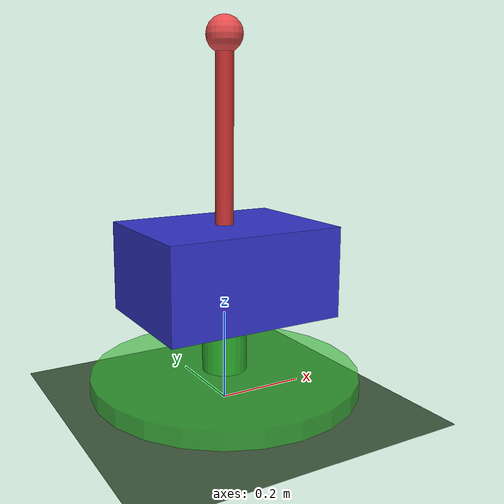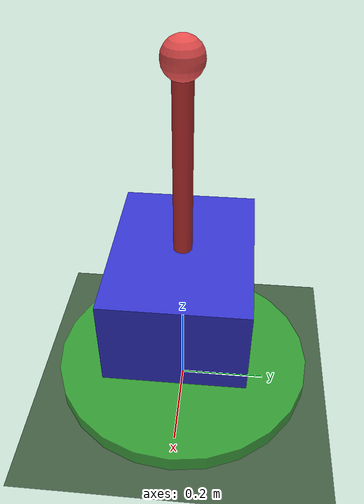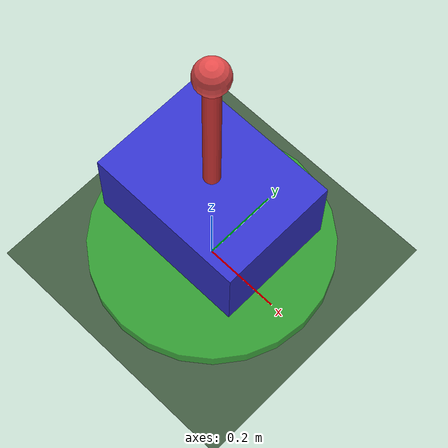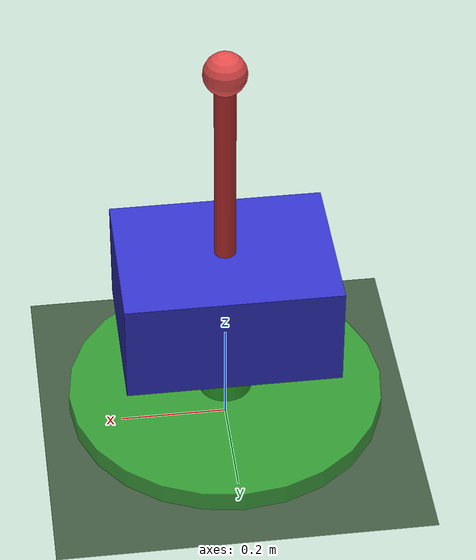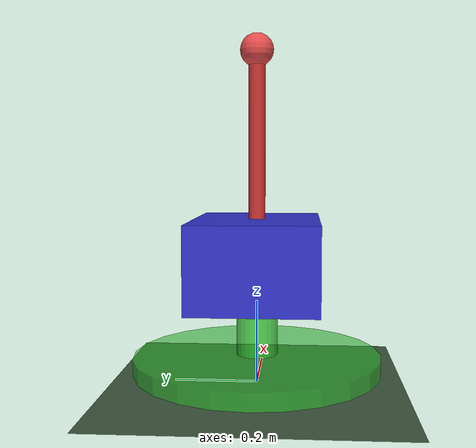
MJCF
<?xml version="1.0" ?>
<mujoco model="pendulum">
  <compiler angle="radian"/>

  <option gravity="0 0 -9.81" timestep="0.01"/>

  <asset>
    <texture name="grid" type="2d" builtin="checker" width="512" height="512"
             rgb1="0.2 0.3 0.2" rgb2="0.3 0.4 0.3"/>
    <material name="grid" texture="grid" texrepeat="1 1" texuniform="true" reflectance="0.2"/>
  </asset>

  <worldbody>
    <!-- Ground plane -->
    <geom name="ground" type="plane" size="50 50 0.1" material="grid"/>

    <!-- Cart (slides along x-axis) -->
    <body name="cart" pos="0 0 0.3">
      <!-- Slider joint (translation along x-axis) -->
      <joint name="cart_slider" type="slide" axis="1 0 0" limited="false" damping="0.1"/>

      <!-- Cart visualization (box) -->
      <geom name="cart_body" type="box" size="0.2 0.15 0.1" rgba="0.2 0.2 0.8 1" mass="1.0"/>

      <!-- Pendulum pole (attached to cart with revolute joint) -->
      <body name="pole" pos="0 0 0">
        <!-- Revolute joint around y-axis (pole swings in x-z plane) -->
        <joint name="pole_hinge" type="hinge" axis="0 1 0" limited="false" damping="0.01"/>

        <!-- Pole visualization (capsule from joint to tip) -->
        <!-- Length is 0.5m, so tip is at (0, 0, 0.5) in pole frame -->
        <geom name="pole_body" type="capsule" size="0.02" fromto="0 0 0 0 0 0.5" rgba="0.8 0.2 0.2 1" mass="0.1"/>

        <!-- Pole tip marker (small sphere at end) -->
        <geom name="pole_tip" type="sphere" size="0.04" pos="0 0 0.5" rgba="0.9 0.3 0.3 1" mass="0.01"/>
      </body>
    </body>

    <!-- Start position marker (green) -->
    <body name="start_marker" pos="0 0 0.05">
      <geom name="start_base" type="cylinder" size="0.3 0.02" rgba="0.2 0.8 0.2 0.6"/>
      <geom name="start_post" type="cylinder" size="0.05 0.2" rgba="0.2 0.8 0.2 0.8" pos="0 0 0.1"/>
    </body>

    <!-- Goal position marker (red) -->
    <body name="goal_marker" pos="0 0 0.05">
      <geom name="goal_base" type="cylinder" size="0.3 0.02" rgba="0.8 0.2 0.2 0.6"/>
      <geom name="goal_post" type="cylinder" size="0.05 0.2" rgba="0.8 0.2 0.2 0.8" pos="0 0 0.1"/>
    </body>

    <!-- Light -->
    <light pos="3 3 6" dir="-0.5 -0.5 -1" diffuse="0.8 0.8 0.8"/>
    <light pos="-3 -3 5" dir="0.5 0.5 -1" diffuse="0.4 0.4 0.4"/>
  </worldbody>
</mujoco>
